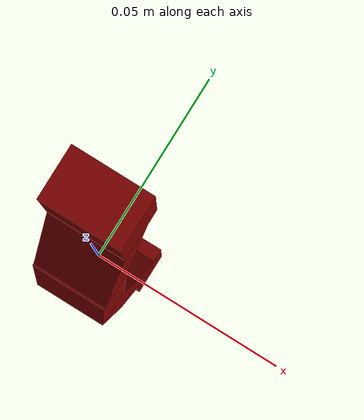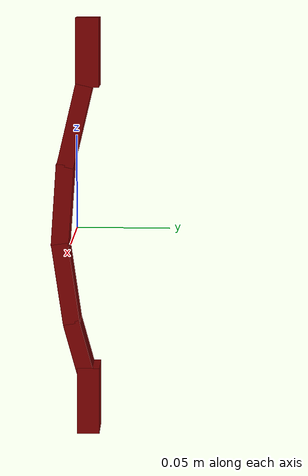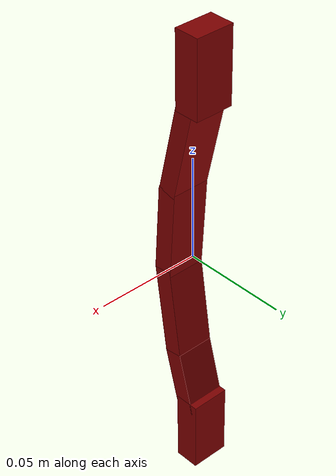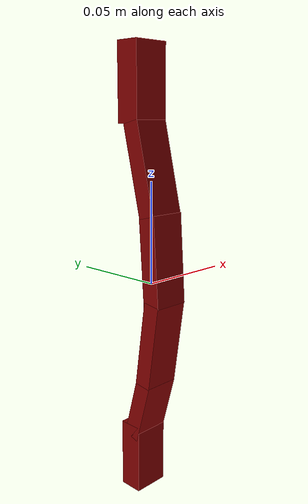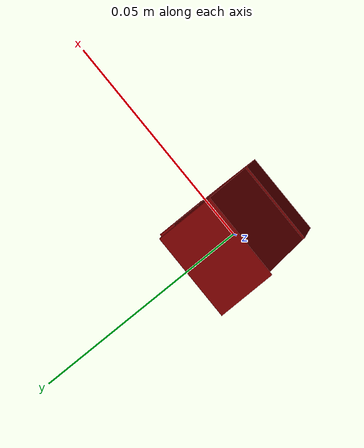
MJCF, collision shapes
<?xml version='1.0' encoding='UTF-8'?>
<mujoco model="model">
  <option timestep="0.002" gravity="0.0 0.0 -9.81"/>
  <compiler angle="radian"/>
  <asset>
    <mesh file="visuals/CabinetHandle044.obj" name="CabinetHandle044_vis"/>
    <texture file="visuals/T_BC001.png" name="tex" type="2d"/>
    <material name="mat" rgba="1 1 1 1.0" texture="tex" shininess="0.4472135901451111" specular="0.3103448502657381"/>
  </asset>
  <default>
    <default class="visual">
      <geom conaffinity="0" contype="0" group="1" type="mesh"/>
    </default>
    <default class="collision">
      <geom group="0" rgba="0.5 0 0 0.5" density="1.0" solref="0.004 1" solimp="0.998 0.998 0.001"/>
    </default>
    <default class="spawn">
      <geom group="0" rgba="1 1 1 0.5" contype="0" conaffinity="0"/>
      <site group="0" rgba="1 1 1 0.5"/>
    </default>
    <default class="region">
      <geom group="1" conaffinity="0" contype="0" rgba="0 1 0 0" mass="0"/>
    </default>
  </default>
  <worldbody>
    <body>
      <body name="object">
        <geom mesh="CabinetHandle044_vis" type="mesh" solimp="0.998 0.998 0.001" solref="0.001 1" friction="0.95 0.3 0.1" class="visual" material="mat"/>
        <geom type="box" pos="-2.801981267204469e-18 0.006140797398984432 0.09467127174139023" size="0.009395811706781387 0.006181228905916214 0.01819511689245701" quat="1.0 0.0 0.0 0.0" class="collision"/>
        <geom type="box" pos="5.815894479151149e-18 -0.0007644286379218102 0.05585981160402298" size="0.009395815432071686 0.004513916559517384 0.022214166820049286" quat="0.9931753873825073 -0.11663047969341278 2.5897168785740728e-17 1.2578173155228492e-24" class="collision"/>
        <geom type="box" pos="1.529592279358762e-17 -0.007410346996039152 0.01316556241363287" size="0.009395815432071686 0.00473182275891304 0.022219598293304443" quat="0.9993845224380493 -0.035079486668109894 7.789210758193364e-18 3.651086899786672e-24" class="collision"/>
        <geom type="box" pos="2.4757729146310157e-17 -0.005957251880317926 -0.029446624219417572" size="0.009395815432071686 0.004513916559517384 0.022214168682694435" quat="0.9975045323371887 0.07060225307941437 -1.5676851046196863e-17 6.473269131511956e-24" class="collision"/>
        <geom type="box" pos="3.299285642911861e-17 0.0012497489806264639 -0.06653434038162231" size="0.009395815432071686 0.00447643268853426 0.01659536361694336" quat="0.9911808967590332 0.13251568377017975 -2.9424392649119946e-17 1.2921075213509961e-24" class="collision"/>
        <geom type="box" pos="-2.801981267204469e-18 0.006140797398984432 -0.09446074068546295" size="0.009395815432071686 0.006076558958739042 0.01844610832631588" quat="1.0 0.0 0.0 0.0" class="collision"/>
        <geom class="region" name="reg_main" type="box" pos="1.1641532182693481e-09 2.1886080503463745e-08 0.0" size="0.010198835119605065 0.013627895921468736 0.11383893138170242"/>
      </body>
    </body>
  </worldbody>
  <actuator/>
</mujoco>
